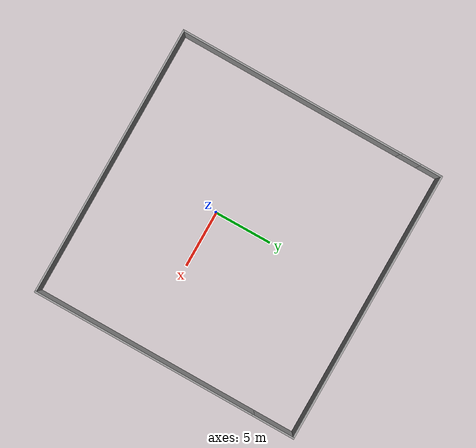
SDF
<?xml version='1.0'?>
<sdf version='1.6'>
  <model name='square_walls'>
    <pose frame=''>0.6493 2.43132 0 0 -0 0</pose>
    <link name='Wall_31'>
      <collision name='Wall_31_Collision'>
        <geometry>
          <box>
            <size>24 0.15 2.5</size>
          </box>
        </geometry>
        <pose frame=''>0 0 1.25 0 -0 0</pose>
      </collision>
      <visual name='Wall_31_Visual'>
        <pose frame=''>0 0 1.25 0 -0 0</pose>
        <geometry>
          <box>
            <size>24 0.15 2.5</size>
          </box>
        </geometry>
        <material>
          <script>
            <uri>file://media/materials/scripts/gazebo.material</uri>
            <name>Gazebo/Grey</name>
          </script>
          <ambient>1 1 1 1</ambient>
        </material>
        <meta>
          <layer>0</layer>
        </meta>
      </visual>
      <pose frame=''>0 -11.775 0 0 -0 0</pose>
    </link>
    <link name='Wall_33'>
      <collision name='Wall_33_Collision'>
        <geometry>
          <box>
            <size>20 0.15 2.5</size>
          </box>
        </geometry>
        <pose frame=''>0 0 1.25 0 -0 0</pose>
      </collision>
      <visual name='Wall_33_Visual'>
        <pose frame=''>0 0 1.25 0 -0 0</pose>
        <geometry>
          <box>
            <size>20 0.15 2.5</size>
          </box>
        </geometry>
        <material>
          <script>
            <uri>file://media/materials/scripts/gazebo.material</uri>
            <name>Gazebo/Grey</name>
          </script>
          <ambient>1 1 1 1</ambient>
        </material>
        <meta>
          <layer>0</layer>
        </meta>
      </visual>
      <pose frame=''>11.925 -1.85 0 0 -0 1.5708</pose>
    </link>
    <link name='Wall_35'>
      <collision name='Wall_35_Collision'>
        <geometry>
          <box>
            <size>20 0.15 2.5</size>
          </box>
        </geometry>
        <pose frame=''>0 0 1.25 0 -0 0</pose>
      </collision>
      <visual name='Wall_35_Visual'>
        <pose frame=''>0 0 1.25 0 -0 0</pose>
        <geometry>
          <box>
            <size>20 0.15 2.5</size>
          </box>
        </geometry>
        <material>
          <script>
            <uri>file://media/materials/scripts/gazebo.material</uri>
            <name>Gazebo/Grey</name>
          </script>
          <ambient>1 1 1 1</ambient>
        </material>
        <meta>
          <layer>0</layer>
        </meta>
      </visual>
      <pose frame=''>-11.925 -1.85 0 0 -0 1.5708</pose>
    </link>
    <link name='Wall_38'>
      <collision name='Wall_38_Collision'>
        <geometry>
          <box>
            <size>2 0.15 2.5</size>
          </box>
        </geometry>
        <pose frame=''>0 0 1.25 0 -0 0</pose>
      </collision>
      <visual name='Wall_38_Visual'>
        <pose frame=''>0 0 1.25 0 -0 0</pose>
        <geometry>
          <box>
            <size>2 0.15 2.5</size>
          </box>
        </geometry>
        <material>
          <script>
            <uri>file://media/materials/scripts/gazebo.material</uri>
            <name>Gazebo/Grey</name>
          </script>
          <ambient>1 1 1 1</ambient>
        </material>
        <meta>
          <layer>0</layer>
        </meta>
      </visual>
      <pose frame=''>-11.925 9 0 0 -0 1.5708</pose>
    </link>
    <link name='Wall_40'>
      <collision name='Wall_40_Collision'>
        <geometry>
          <box>
            <size>2 0.15 2.5</size>
          </box>
        </geometry>
        <pose frame=''>0 0 1.25 0 -0 0</pose>
      </collision>
      <visual name='Wall_40_Visual'>
        <pose frame=''>0 0 1.25 0 -0 0</pose>
        <geometry>
          <box>
            <size>2 0.15 2.5</size>
          </box>
        </geometry>
        <material>
          <script>
            <uri>file://media/materials/scripts/gazebo.material</uri>
            <name>Gazebo/Grey</name>
          </script>
          <ambient>1 1 1 1</ambient>
        </material>
        <meta>
          <layer>0</layer>
        </meta>
      </visual>
      <pose frame=''>-11.925 10.85 0 0 -0 1.5708</pose>
    </link>
    <link name='Wall_41'>
      <collision name='Wall_41_Collision'>
        <geometry>
          <box>
            <size>24 0.15 2.5</size>
          </box>
        </geometry>
        <pose frame=''>0 0 1.25 0 -0 0</pose>
      </collision>
      <visual name='Wall_41_Visual'>
        <pose frame=''>0 0 1.25 0 -0 0</pose>
        <geometry>
          <box>
            <size>24 0.15 2.5</size>
          </box>
        </geometry>
        <material>
          <script>
            <uri>file://media/materials/scripts/gazebo.material</uri>
            <name>Gazebo/Grey</name>
          </script>
          <ambient>1 1 1 1</ambient>
        </material>
        <meta>
          <layer>0</layer>
        </meta>
      </visual>
      <pose frame=''>0 11.775 0 0 -0 0</pose>
    </link>
    <link name='Wall_42'>
      <collision name='Wall_42_Collision'>
        <geometry>
          <box>
            <size>3.85 0.15 2.5</size>
          </box>
        </geometry>
        <pose frame=''>0 0 1.25 0 -0 0</pose>
      </collision>
      <visual name='Wall_42_Visual'>
        <pose frame=''>0 0 1.25 0 -0 0</pose>
        <geometry>
          <box>
            <size>3.85 0.15 2.5</size>
          </box>
        </geometry>
        <material>
          <script>
            <uri>file://media/materials/scripts/gazebo.material</uri>
            <name>Gazebo/Grey</name>
          </script>
          <ambient>1 1 1 1</ambient>
        </material>
        <meta>
          <layer>0</layer>
        </meta>
      </visual>
      <pose frame=''>11.925 9.925 0 0 -0 -1.5708</pose>
    </link>
    <static>1</static>
  </model>
</sdf>
